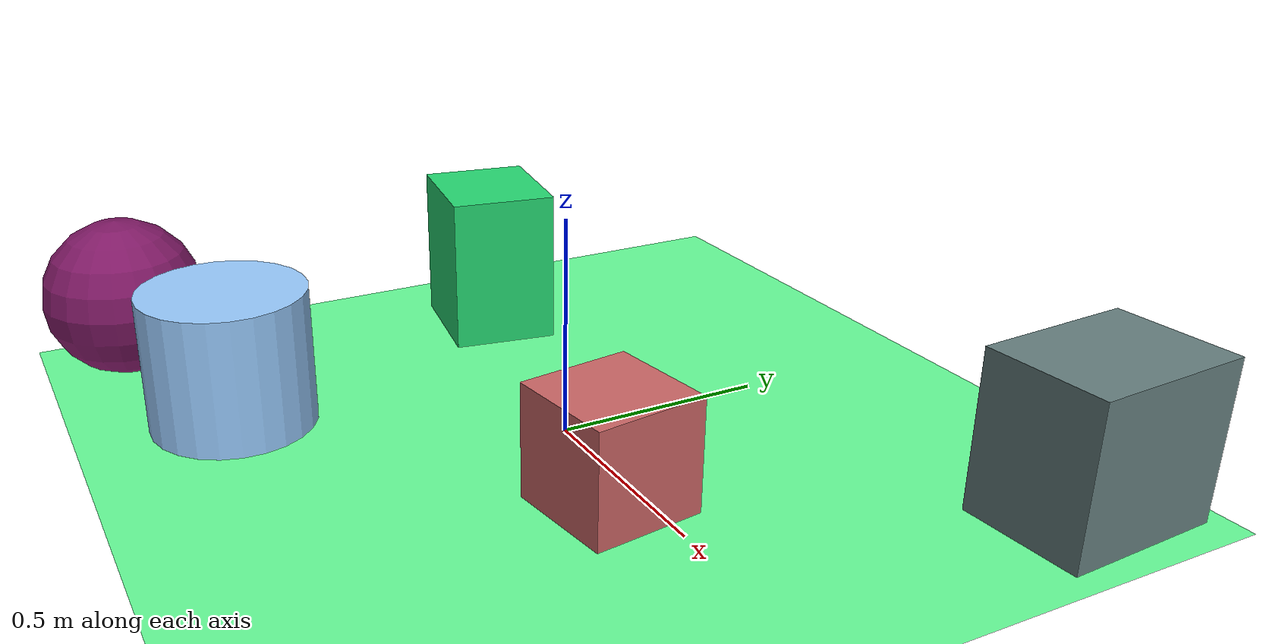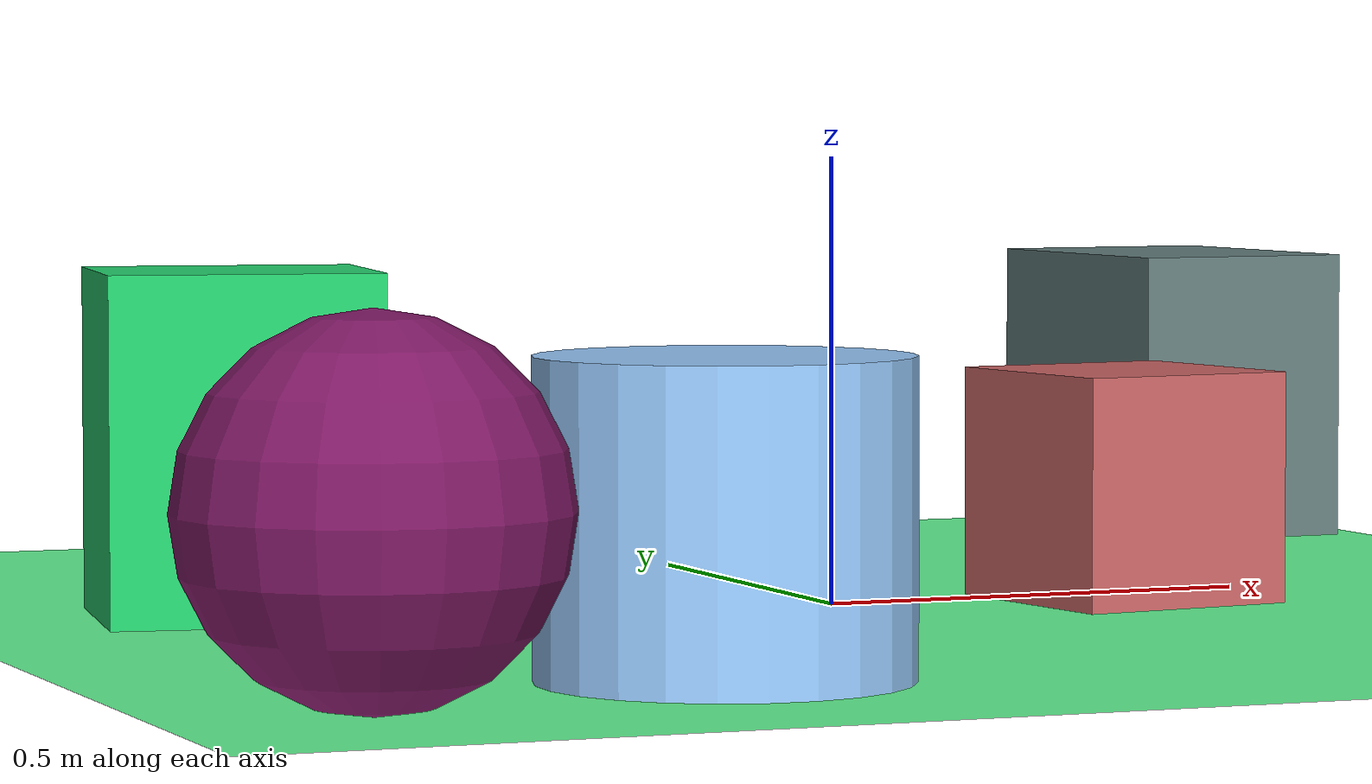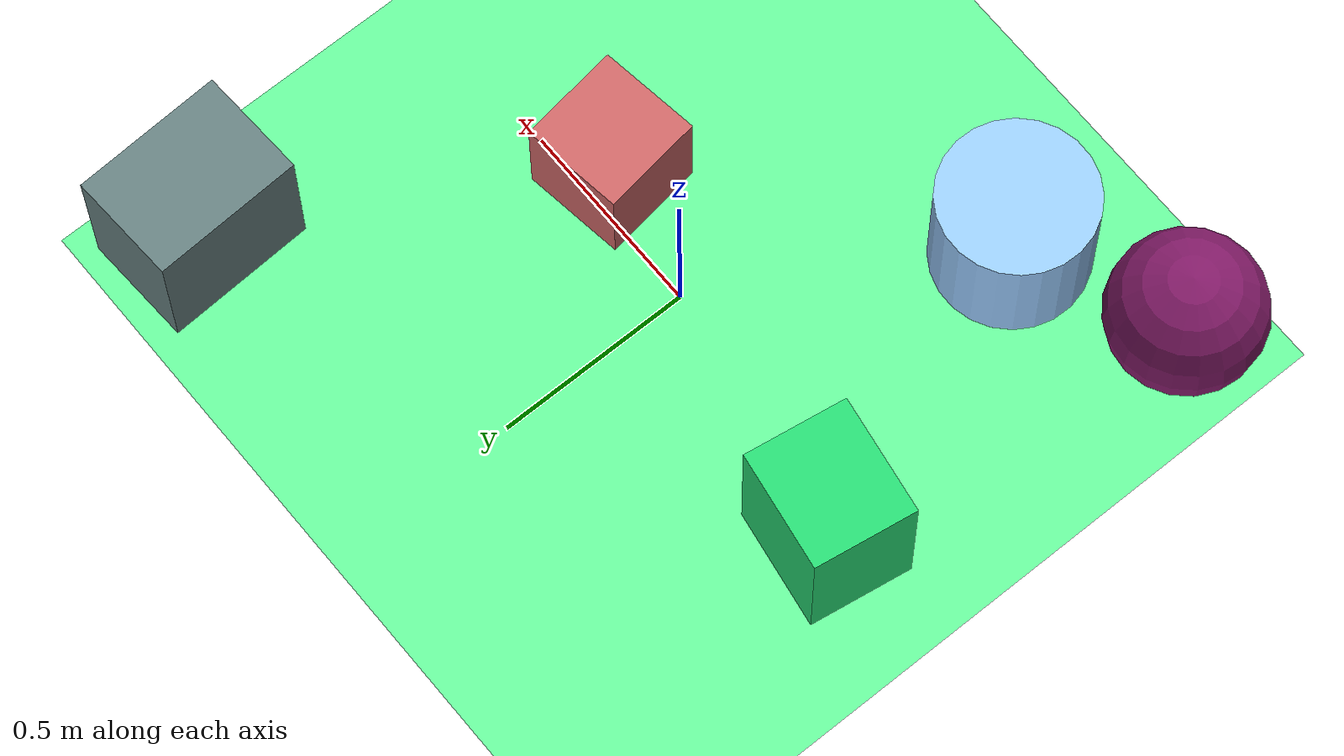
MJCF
<mujoco>
   <asset>
<texture type="skybox" builtin="gradient" rgb1="0.8 1.0 0.5" rgb2="0.1 0.2 0.3" width="256" height="256"/>
<texture name="checker_0" builtin="checker" rgb1="0.1 0.9 0.0" rgb2="0.2 0.8 0.9" width="200" height="200"/>
<texture name="checker_1" builtin="checker" rgb1="0.6 0.5 0.5" rgb2="0.2 0.5 0.5" width="200" height="200"/>
<texture name="flat_2" builtin="flat" rgb1="0.5 0.1 0.4" rgb2="0.5 0.1 0.4"  width="200" height="200"/>
<texture name="checker_3" builtin="checker" rgb1="0.7 0.2 0.4" rgb2="0.9 0.6 0.4" width="200" height="200"/>
<texture name="flat_4" builtin="flat" rgb1="0.6 0.8 1.0" rgb2="0.6 0.8 1.0"  width="200" height="200"/><material name="checker_0_mat" reflectance="0" texrepeat="10 10" texture="checker_0" texuniform="false" />
<material name="checker_1_mat" reflectance="0" texrepeat="8 8" texture="checker_1" texuniform="false" />
<material name="flat_2_mat" reflectance="0" texture="flat_2" texuniform="true"/>
<material name="checker_3_mat" reflectance="0" texrepeat="4 4" texture="checker_3" texuniform="false" />
<material name="flat_4_mat" reflectance="0" texture="flat_4" texuniform="true"/>
   </asset>

   <worldbody>
      <light diffuse=".9 .9 .9" pos="0 0 3" dir="0 0 -1"/>
     <geom type="plane" size="1 1 0.1" rgba="0.4 1.0 0.6 1"/>
<geom type="box" pos="-0.66 0.12 0.19" size="0.13 0.15 0.19" material="checker_0_mat" euler="0 0 81" />
<geom type="box" pos="0.8 0.75 0.18" size="0.14 0.19 0.18" material="checker_1_mat" euler="0 0 3" />
<geom type="sphere" pos="-0.8 -0.8 0.19" size="0.19 0.19 0.19" material="flat_2_mat" euler="0 0 20" />
<geom type="box" pos="0.33 -0.07 0.13" size="0.13 0.13 0.13" material="checker_3_mat" euler="0 0 8" />
<geom type="cylinder" pos="-0.39 -0.65 0.16" size="0.19 0.16 0.16" material="flat_4_mat" euler="0 0 21" /><camera euler="60 0 180" fovy="60" name="camera1" pos="-0.2 -1.5 1"></camera>   </worldbody>
</mujoco>
